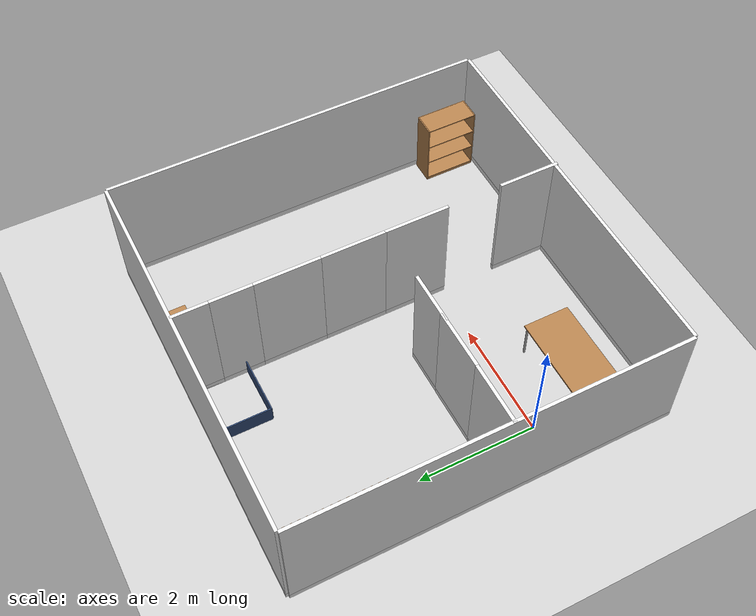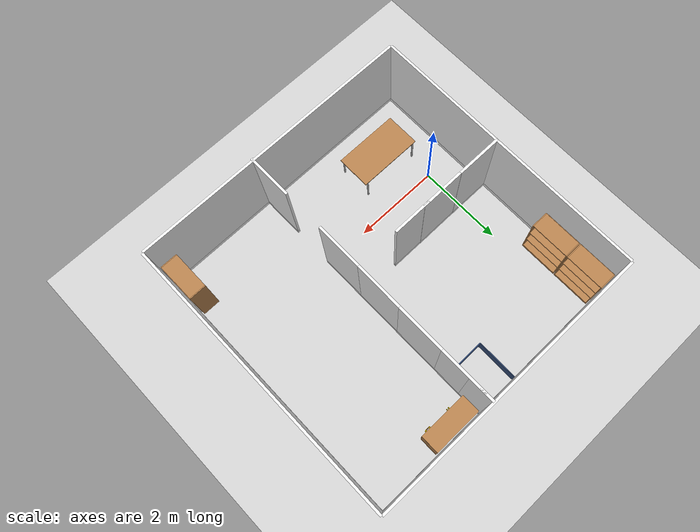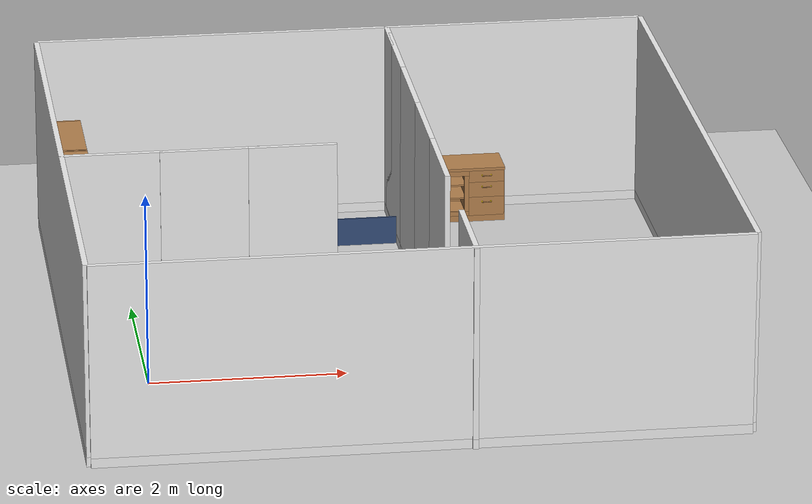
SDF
<sdf version="1.6">
 <world name="default">
  <light name="sun" type="directional">
   <pose>0 0 10 0 -0 0</pose>
   <diffuse>0.8 0.8 0.8 1</diffuse>
   <specular>0.2 0.2 0.2 1</specular>
   <attenuation>
    <range>1000</range>
    <constant>0.9</constant>
    <linear>0.01</linear>
    <quadratic>0.001</quadratic>
   </attenuation>
   <direction>-0.5 0.1 -0.9</direction>
  </light>
  <model name="ground_plane">
   <static>1</static>
   <link name="link">
    <collision name="collision">
     <geometry><plane><normal>0 0 1</normal><size>100 100</size></plane></geometry>
     <surface><friction><ode><mu>100</mu><mu2>50</mu2></ode></friction></surface>
    </collision>
    <visual name="visual">
     <cast_shadows>0</cast_shadows>
     <geometry><plane><normal>0 0 1</normal><size>100 100</size></plane></geometry>
     <material>
      <script><uri>file://media/materials/scripts/gazebo.material</uri><name>Gazebo/Grey</name></script>
     </material>
    </visual>
   </link>
  </model>
  <gravity>0 0 -9.8</gravity>
  <magnetic_field>6e-06 2.3e-05 -4.2e-05</magnetic_field>
  <atmosphere type="adiabatic"/>
  <physics name="default_physics" default="0" type="ode">
   <max_step_size>0.001</max_step_size>
   <real_time_factor>1</real_time_factor>
   <real_time_update_rate>1000</real_time_update_rate>
  </physics>
  <scene><ambient>0.4 0.4 0.4 1</ambient><background>0.7 0.7 0.7 1</background><shadows>1</shadows></scene>
  <spherical_coordinates>
   <surface_model>EARTH_WGS84</surface_model>
   <latitude_deg>0</latitude_deg>
   <longitude_deg>0</longitude_deg>
   <elevation>0</elevation>
   <heading_deg>0</heading_deg>
  </spherical_coordinates>
  <model name="full_wall_55_6475_2090">
   <link name="link">
    <inertial>
     <mass>50</mass>
     <inertia><ixx>1</ixx><ixy>0</ixy><ixz>0</ixz><iyy>1</iyy><iyz>0</iyz><izz>1</izz></inertia>
    </inertial>
    <visual name="bottom_frame">
     <pose>0 0 0.05 0 -0 0</pose>
     <geometry><box><size>0.055 6.475 0.1</size></box></geometry>
     <material>
      <script><uri>model://base_materials/color/scripts</uri><name>hsr_color/white</name></script>
     </material>
    </visual>
    <collision name="collision_bottom_frame">
     <pose>0 0 0.05 0 -0 0</pose>
     <geometry><box><size>0.055 6.475 0.1</size></box></geometry>
    </collision>
    <visual name="wall">
     <pose>0 0 1.095 0 -0 0</pose>
     <geometry><box><size>0.055 6.475 1.99</size></box></geometry>
     <material>
      <script>
       <uri>model://base_materials/wall/scripts</uri>
       <uri>model://base_materials/wall/textures</uri>
       <name>wall/white_noise</name>
      </script>
     </material>
    </visual>
    <collision name="collision_wall">
     <pose>0 0 1.095 0 -0 0</pose>
     <geometry><box><size>0.055 6.475 1.99</size></box></geometry>
    </collision>
    <velocity_decay><linear>0</linear><angular>0</angular></velocity_decay>
   </link>
   <static>1</static>
   <pose>-0.75 1.25 0 0 -0 0</pose>
  </model>
  <model name="full_wall_55_6475_2090_clone">
   <link name="link">
    <inertial>
     <mass>50</mass>
     <inertia><ixx>1</ixx><ixy>0</ixy><ixz>0</ixz><iyy>1</iyy><iyz>0</iyz><izz>1</izz></inertia>
    </inertial>
    <visual name="bottom_frame">
     <pose>0 0 0.05 0 -0 0</pose>
     <geometry><box><size>0.055 6.475 0.1</size></box></geometry>
     <material>
      <script><uri>model://base_materials/color/scripts</uri><name>hsr_color/white</name></script>
     </material>
    </visual>
    <collision name="collision_bottom_frame">
     <pose>0 0 0.05 0 -0 0</pose>
     <geometry><box><size>0.055 6.475 0.1</size></box></geometry>
    </collision>
    <visual name="wall">
     <pose>0 0 1.095 0 -0 0</pose>
     <geometry><box><size>0.055 6.475 1.99</size></box></geometry>
     <material>
      <script>
       <uri>model://base_materials/wall/scripts</uri>
       <uri>model://base_materials/wall/textures</uri>
       <name>wall/white_noise</name>
      </script>
     </material>
    </visual>
    <collision name="collision_wall">
     <pose>0 0 1.095 0 -0 0</pose>
     <geometry><box><size>0.055 6.475 1.99</size></box></geometry>
    </collision>
    <velocity_decay><linear>0</linear><angular>0</angular></velocity_decay>
   </link>
   <static>1</static>
   <pose>2.5 4.5 0 0 -0 1.57</pose>
  </model>
  <model name="full_wall_55_6475_2090_clone_clone">
   <link name="link">
    <inertial>
     <mass>50</mass>
     <inertia><ixx>1</ixx><ixy>0</ixy><ixz>0</ixz><iyy>1</iyy><iyz>0</iyz><izz>1</izz></inertia>
    </inertial>
    <visual name="bottom_frame">
     <pose>0 0 0.05 0 -0 0</pose>
     <geometry><box><size>0.055 6.475 0.1</size></box></geometry>
     <material>
      <script><uri>model://base_materials/color/scripts</uri><name>hsr_color/white</name></script>
     </material>
    </visual>
    <collision name="collision_bottom_frame">
     <pose>0 0 0.05 0 -0 0</pose>
     <geometry><box><size>0.055 6.475 0.1</size></box></geometry>
    </collision>
    <visual name="wall">
     <pose>0 0 1.095 0 -0 0</pose>
     <geometry><box><size>0.055 6.475 1.99</size></box></geometry>
     <material>
      <script>
       <uri>model://base_materials/wall/scripts</uri>
       <uri>model://base_materials/wall/textures</uri>
       <name>wall/white_noise</name>
      </script>
     </material>
    </visual>
    <collision name="collision_wall">
     <pose>0 0 1.095 0 -0 0</pose>
     <geometry><box><size>0.055 6.475 1.99</size></box></geometry>
    </collision>
    <velocity_decay><linear>0</linear><angular>0</angular></velocity_decay>
   </link>
   <static>1</static>
   <pose>2.5 -2 0 0 -0 1.57</pose>
  </model>
  <model name="full_wall_55_1100_2090">
   <link name="link">
    <inertial>
     <mass>50</mass>
     <inertia><ixx>1</ixx><ixy>0</ixy><ixz>0</ixz><iyy>1</iyy><iyz>0</iyz><izz>1</izz></inertia>
    </inertial>
    <visual name="bottom_frame">
     <pose>0 0 0.05 0 -0 0</pose>
     <geometry><box><size>0.055 1.1 0.1</size></box></geometry>
     <material>
      <script><uri>model://base_materials/color/scripts</uri><name>hsr_color/white</name></script>
     </material>
    </visual>
    <collision name="collision_bottom_frame">
     <pose>0 0 0.05 0 -0 0</pose>
     <geometry><box><size>0.055 1.1 0.1</size></box></geometry>
    </collision>
    <visual name="wall">
     <pose>0 0 1.095 0 -0 0</pose>
     <geometry><box><size>0.055 1.1 1.99</size></box></geometry>
     <material>
      <script>
       <uri>model://base_materials/wall/scripts</uri>
       <uri>model://base_materials/wall/textures</uri>
       <name>wall/white_noise</name>
      </script>
     </material>
    </visual>
    <collision name="collision_wall">
     <pose>0 0 1.095 0 -0 0</pose>
     <geometry><box><size>0.055 1.1 1.99</size></box></geometry>
    </collision>
    <velocity_decay><linear>0</linear><angular>0</angular></velocity_decay>
   </link>
   <static>1</static>
   <pose>3 0.474795 0 0 -0 0</pose>
  </model>
  <model name="full_wall_55_900_2090">
   <link name="link">
    <inertial>
     <mass>50</mass>
     <inertia><ixx>1</ixx><ixy>0</ixy><ixz>0</ixz><iyy>1</iyy><iyz>0</iyz><izz>1</izz></inertia>
    </inertial>
    <visual name="bottom_frame">
     <pose>0 0 0.05 0 -0 0</pose>
     <geometry><box><size>0.055 1.04 0.1</size></box></geometry>
     <material>
      <script><uri>model://base_materials/color/scripts</uri><name>hsr_color/white</name></script>
     </material>
    </visual>
    <collision name="collision_bottom_frame">
     <pose>0 0 0.05 0 -0 0</pose>
     <geometry><box><size>0.055 1.04 0.1</size></box></geometry>
    </collision>
    <visual name="wall">
     <pose>0 0 1.095 0 -0 0</pose>
     <geometry><box><size>0.055 1.04 1.99</size></box></geometry>
     <material>
      <script>
       <uri>model://base_materials/wall/scripts</uri>
       <uri>model://base_materials/wall/textures</uri>
       <name>wall/white_noise</name>
      </script>
     </material>
    </visual>
    <collision name="collision_wall">
     <pose>0 0 1.095 0 -0 0</pose>
     <geometry><box><size>0.055 1.04 1.99</size></box></geometry>
    </collision>
    <velocity_decay><linear>0</linear><angular>0</angular></velocity_decay>
   </link>
   <static>1</static>
   <pose>3 -1.53087 0 0 -0 0</pose>
  </model>
  <model name="full_wall_55_6475_2090_clone_0">
   <link name="link">
    <inertial>
     <mass>50</mass>
     <inertia><ixx>1</ixx><ixy>0</ixy><ixz>0</ixz><iyy>1</iyy><iyz>0</iyz><izz>1</izz></inertia>
    </inertial>
    <visual name="bottom_frame">
     <pose>0 0 0.05 0 -0 0</pose>
     <geometry><box><size>0.055 6.475 0.1</size></box></geometry>
     <material>
      <script><uri>model://base_materials/color/scripts</uri><name>hsr_color/white</name></script>
     </material>
    </visual>
    <collision name="collision_bottom_frame">
     <pose>0 0 0.05 0 -0 0</pose>
     <geometry><box><size>0.055 6.475 0.1</size></box></geometry>
    </collision>
    <visual name="wall">
     <pose>0 0 1.095 0 -0 0</pose>
     <geometry><box><size>0.055 6.475 1.99</size></box></geometry>
     <material>
      <script>
       <uri>model://base_materials/wall/scripts</uri>
       <uri>model://base_materials/wall/textures</uri>
       <name>wall/white_noise</name>
      </script>
     </material>
    </visual>
    <collision name="collision_wall">
     <pose>0 0 1.095 0 -0 0</pose>
     <geometry><box><size>0.055 6.475 1.99</size></box></geometry>
    </collision>
    <velocity_decay><linear>0</linear><angular>0</angular></velocity_decay>
   </link>
   <static>1</static>
   <pose>5.75 1.25 0 0 -0 0</pose>
  </model>
  <model name="full_wall_55_1100_2090_clone">
   <link name="link">
    <inertial>
     <mass>50</mass>
     <inertia><ixx>1</ixx><ixy>0</ixy><ixz>0</ixz><iyy>1</iyy><iyz>0</iyz><izz>1</izz></inertia>
    </inertial>
    <visual name="bottom_frame">
     <pose>0 0 0.05 0 -0 0</pose>
     <geometry><box><size>0.055 1.1 0.1</size></box></geometry>
     <material>
      <script><uri>model://base_materials/color/scripts</uri><name>hsr_color/white</name></script>
     </material>
    </visual>
    <collision name="collision_bottom_frame">
     <pose>0 0 0.05 0 -0 0</pose>
     <geometry><box><size>0.055 1.1 0.1</size></box></geometry>
    </collision>
    <visual name="wall">
     <pose>0 0 1.095 0 -0 0</pose>
     <geometry><box><size>0.055 1.1 1.99</size></box></geometry>
     <material>
      <script>
       <uri>model://base_materials/wall/scripts</uri>
       <uri>model://base_materials/wall/textures</uri>
       <name>wall/white_noise</name>
      </script>
     </material>
    </visual>
    <collision name="collision_wall">
     <pose>0 0 1.095 0 -0 0</pose>
     <geometry><box><size>0.055 1.1 1.99</size></box></geometry>
    </collision>
    <velocity_decay><linear>0</linear><angular>0</angular></velocity_decay>
   </link>
   <static>1</static>
   <pose>3 1.55 0 0 -0 0</pose>
  </model>
  <model name="full_wall_55_1100_2090_clone_clone">
   <link name="link">
    <inertial>
     <mass>50</mass>
     <inertia><ixx>1</ixx><ixy>0</ixy><ixz>0</ixz><iyy>1</iyy><iyz>0</iyz><izz>1</izz></inertia>
    </inertial>
    <visual name="bottom_frame">
     <pose>0 0 0.05 0 -0 0</pose>
     <geometry><box><size>0.055 1.1 0.1</size></box></geometry>
     <material>
      <script><uri>model://base_materials/color/scripts</uri><name>hsr_color/white</name></script>
     </material>
    </visual>
    <collision name="collision_bottom_frame">
     <pose>0 0 0.05 0 -0 0</pose>
     <geometry><box><size>0.055 1.1 0.1</size></box></geometry>
    </collision>
    <visual name="wall">
     <pose>0 0 1.095 0 -0 0</pose>
     <geometry><box><size>0.055 1.1 1.99</size></box></geometry>
     <material>
      <script>
       <uri>model://base_materials/wall/scripts</uri>
       <uri>model://base_materials/wall/textures</uri>
       <name>wall/white_noise</name>
      </script>
     </material>
    </visual>
    <collision name="collision_wall">
     <pose>0 0 1.095 0 -0 0</pose>
     <geometry><box><size>0.055 1.1 1.99</size></box></geometry>
    </collision>
    <velocity_decay><linear>0</linear><angular>0</angular></velocity_decay>
   </link>
   <static>1</static>
   <pose>3 2.65 0 0 -0 0</pose>
  </model>
  <model name="full_wall_55_1100_2090_clone_clone_0">
   <link name="link">
    <inertial>
     <mass>50</mass>
     <inertia><ixx>1</ixx><ixy>0</ixy><ixz>0</ixz><iyy>1</iyy><iyz>0</iyz><izz>1</izz></inertia>
    </inertial>
    <visual name="bottom_frame">
     <pose>0 0 0.05 0 -0 0</pose>
     <geometry><box><size>0.055 1.1 0.1</size></box></geometry>
     <material>
      <script><uri>model://base_materials/color/scripts</uri><name>hsr_color/white</name></script>
     </material>
    </visual>
    <collision name="collision_bottom_frame">
     <pose>0 0 0.05 0 -0 0</pose>
     <geometry><box><size>0.055 1.1 0.1</size></box></geometry>
    </collision>
    <visual name="wall">
     <pose>0 0 1.095 0 -0 0</pose>
     <geometry><box><size>0.055 1.1 1.99</size></box></geometry>
     <material>
      <script>
       <uri>model://base_materials/wall/scripts</uri>
       <uri>model://base_materials/wall/textures</uri>
       <name>wall/white_noise</name>
      </script>
     </material>
    </visual>
    <collision name="collision_wall">
     <pose>0 0 1.095 0 -0 0</pose>
     <geometry><box><size>0.055 1.1 1.99</size></box></geometry>
    </collision>
    <velocity_decay><linear>0</linear><angular>0</angular></velocity_decay>
   </link>
   <static>1</static>
   <pose>3 3.75 0 0 -0 0</pose>
  </model>
  <model name="full_wall_55_600_2090">
   <link name="link">
    <inertial>
     <mass>50</mass>
     <inertia><ixx>1</ixx><ixy>0</ixy><ixz>0</ixz><iyy>1</iyy><iyz>0</iyz><izz>1</izz></inertia>
    </inertial>
    <visual name="bottom_frame">
     <pose>0 0 0.05 0 -0 0</pose>
     <geometry><box><size>0.055 0.6 0.1</size></box></geometry>
     <material>
      <script><uri>model://base_materials/color/scripts</uri><name>hsr_color/white</name></script>
     </material>
    </visual>
    <collision name="collision_bottom_frame">
     <pose>0 0 0.05 0 -0 0</pose>
     <geometry><box><size>0.055 0.6 0.1</size></box></geometry>
    </collision>
    <visual name="wall">
     <pose>0 0 1.095 0 -0 0</pose>
     <geometry><box><size>0.055 0.6 1.99</size></box></geometry>
     <material>
      <script>
       <uri>model://base_materials/wall/scripts</uri>
       <uri>model://base_materials/wall/textures</uri>
       <name>wall/white_noise</name>
      </script>
     </material>
    </visual>
    <collision name="collision_wall">
     <pose>0 0 1.095 0 -0 0</pose>
     <geometry><box><size>0.055 0.6 1.99</size></box></geometry>
    </collision>
    <velocity_decay><linear>0</linear><angular>0</angular></velocity_decay>
   </link>
   <static>1</static>
   <pose>3 4.2 0 0 -0 0</pose>
  </model>
  <model name="low_wall">
   <link name="link">
    <inertial>
     <mass>50</mass>
     <inertia><ixx>1</ixx><ixy>0</ixy><ixz>0</ixz><iyy>1</iyy><iyz>0</iyz><izz>1</izz></inertia>
    </inertial>
    <visual name="wall">
     <pose>0 0 0.15 0 -0 0</pose>
     <geometry><box><size>0.02 1 0.3</size></box></geometry>
     <material>
      <ambient>0.392 0.584 0.929 1</ambient>
      <diffuse>0.196 0.292 0.4645 1</diffuse>
      <specular>0 0 0 1</specular>
     </material>
    </visual>
    <collision name="collision_wall">
     <pose>0 0 0.15 0 -0 0</pose>
     <geometry><box><size>0.02 1 0.3</size></box></geometry>
    </collision>
    <velocity_decay><linear>0</linear><angular>0</angular></velocity_decay>
   </link>
   <static>1</static>
   <pose>2 4 0 0 -0 0</pose>
  </model>
  <model name="low_wall_clone">
   <link name="link">
    <inertial>
     <mass>50</mass>
     <inertia><ixx>1</ixx><ixy>0</ixy><ixz>0</ixz><iyy>1</iyy><iyz>0</iyz><izz>1</izz></inertia>
    </inertial>
    <visual name="wall">
     <pose>0 0 0.15 0 -0 0</pose>
     <geometry><box><size>0.02 1 0.3</size></box></geometry>
     <material>
      <ambient>0.392 0.584 0.929 1</ambient>
      <diffuse>0.196 0.292 0.4645 1</diffuse>
      <specular>0 0 0 1</specular>
     </material>
    </visual>
    <collision name="collision_wall">
     <pose>0 0 0.15 0 -0 0</pose>
     <geometry><box><size>0.02 1 0.3</size></box></geometry>
    </collision>
    <velocity_decay><linear>0</linear><angular>0</angular></velocity_decay>
   </link>
   <static>1</static>
   <pose>2.5 3.5 0 0 0 -1.57</pose>
  </model>
  <model name="table">
   <static>1</static>
   <link name="link">
    <collision name="surface">
     <pose>0 0 1 0 -0 0</pose>
     <geometry><box><size>1.5 0.8 0.03</size></box></geometry>
     <surface><friction><ode><mu>0.6</mu><mu2>0.6</mu2></ode></friction></surface>
    </collision>
    <visual name="visual1">
     <pose>0 0 1 0 -0 0</pose>
     <geometry><box><size>1.5 0.8 0.03</size></box></geometry>
     <material>
      <script><uri>file://media/materials/scripts/gazebo.material</uri><name>Gazebo/Wood</name></script>
     </material>
    </visual>
    <collision name="front_left_leg">
     <pose>0.68 0.38 0.5 0 -0 0</pose>
     <geometry><cylinder><radius>0.02</radius><length>1</length></cylinder></geometry>
    </collision>
    <visual name="front_left_leg">
     <pose>0.68 0.38 0.5 0 -0 0</pose>
     <geometry><cylinder><radius>0.02</radius><length>1</length></cylinder></geometry>
     <material>
      <script><uri>file://media/materials/scripts/gazebo.material</uri><name>Gazebo/Grey</name></script>
     </material>
    </visual>
    <collision name="front_right_leg">
     <pose>0.68 -0.38 0.5 0 -0 0</pose>
     <geometry><cylinder><radius>0.02</radius><length>1</length></cylinder></geometry>
    </collision>
    <visual name="front_right_leg">
     <pose>0.68 -0.38 0.5 0 -0 0</pose>
     <geometry><cylinder><radius>0.02</radius><length>1</length></cylinder></geometry>
     <material>
      <script><uri>file://media/materials/scripts/gazebo.material</uri><name>Gazebo/Grey</name></script>
     </material>
    </visual>
    <collision name="back_right_leg">
     <pose>-0.68 -0.38 0.5 0 -0 0</pose>
     <geometry><cylinder><radius>0.02</radius><length>1</length></cylinder></geometry>
    </collision>
    <visual name="back_right_leg">
     <pose>-0.68 -0.38 0.5 0 -0 0</pose>
     <geometry><cylinder><radius>0.02</radius><length>1</length></cylinder></geometry>
     <material>
      <script><uri>file://media/materials/scripts/gazebo.material</uri><name>Gazebo/Grey</name></script>
     </material>
    </visual>
    <collision name="back_left_leg">
     <pose>-0.68 0.38 0.5 0 -0 0</pose>
     <geometry><cylinder><radius>0.02</radius><length>1</length></cylinder></geometry>
    </collision>
    <visual name="back_left_leg">
     <pose>-0.68 0.38 0.5 0 -0 0</pose>
     <geometry><cylinder><radius>0.02</radius><length>1</length></cylinder></geometry>
     <material>
      <script><uri>file://media/materials/scripts/gazebo.material</uri><name>Gazebo/Grey</name></script>
     </material>
    </visual>
   </link>
   <pose>0.601291 -0.994323 -0.38 0 -0 0</pose>
  </model>
  <model name="bookshelf">
   <static>1</static>
   <link name="link">
    <inertial><mass>1</mass></inertial>
    <collision name="back">
     <pose>0 0.005 0.6 0 -0 0</pose>
     <geometry><box><size>0.9 0.01 1.2</size></box></geometry>
    </collision>
    <visual name="visual1">
     <pose>0 0.005 0.6 0 -0 0</pose>
     <geometry><box><size>0.9 0.01 1.2</size></box></geometry>
     <material>
      <script><uri>file://media/materials/scripts/gazebo.material</uri><name>Gazebo/Wood</name></script>
     </material>
    </visual>
    <collision name="left_side">
     <pose>0.45 -0.195 0.6 0 -0 0</pose>
     <geometry><box><size>0.02 0.4 1.2</size></box></geometry>
    </collision>
    <visual name="visual2">
     <pose>0.45 -0.195 0.6 0 -0 0</pose>
     <geometry><box><size>0.02 0.4 1.2</size></box></geometry>
     <material>
      <script><uri>file://media/materials/scripts/gazebo.material</uri><name>Gazebo/Wood</name></script>
     </material>
    </visual>
    <collision name="right_side">
     <pose>-0.45 -0.195 0.6 0 -0 0</pose>
     <geometry><box><size>0.02 0.4 1.2</size></box></geometry>
    </collision>
    <visual name="visual3">
     <pose>-0.45 -0.195 0.6 0 -0 0</pose>
     <geometry><box><size>0.02 0.4 1.2</size></box></geometry>
     <material>
      <script><uri>file://media/materials/scripts/gazebo.material</uri><name>Gazebo/Wood</name></script>
     </material>
    </visual>
    <collision name="bottom">
     <pose>0 -0.195 0.03 0 -0 0</pose>
     <geometry><box><size>0.88 0.4 0.06</size></box></geometry>
    </collision>
    <visual name="visual4">
     <pose>0 -0.195 0.03 0 -0 0</pose>
     <geometry><box><size>0.88 0.4 0.06</size></box></geometry>
     <material>
      <script><uri>file://media/materials/scripts/gazebo.material</uri><name>Gazebo/Wood</name></script>
     </material>
    </visual>
    <collision name="top">
     <pose>0 -0.195 1.19 0 -0 0</pose>
     <geometry><box><size>0.88 0.4 0.02</size></box></geometry>
    </collision>
    <visual name="visual5">
     <pose>0 -0.195 1.19 0 -0 0</pose>
     <geometry><box><size>0.88 0.4 0.02</size></box></geometry>
     <material>
      <script><uri>file://media/materials/scripts/gazebo.material</uri><name>Gazebo/Wood</name></script>
     </material>
    </visual>
    <collision name="low_shelf">
     <pose>0 -0.195 0.43 0 -0 0</pose>
     <geometry><box><size>0.88 0.4 0.02</size></box></geometry>
    </collision>
    <visual name="visual6">
     <pose>0 -0.195 0.43 0 -0 0</pose>
     <geometry><box><size>0.88 0.4 0.02</size></box></geometry>
     <material>
      <script><uri>file://media/materials/scripts/gazebo.material</uri><name>Gazebo/Wood</name></script>
     </material>
    </visual>
    <collision name="high_shelf">
     <pose>0 -0.195 0.8 0 -0 0</pose>
     <geometry><box><size>0.88 0.4 0.02</size></box></geometry>
    </collision>
    <visual name="visual7">
     <pose>0 -0.195 0.8 0 -0 0</pose>
     <geometry><box><size>0.88 0.4 0.02</size></box></geometry>
     <material>
      <script><uri>file://media/materials/scripts/gazebo.material</uri><name>Gazebo/Wood</name></script>
     </material>
    </visual>
   </link>
   <pose>-0.7 4 0 0 -0 1.57</pose>
  </model>
  <model name="bookshelf_clone">
   <static>1</static>
   <link name="link">
    <inertial><mass>1</mass></inertial>
    <collision name="back">
     <pose>0 0.005 0.6 0 -0 0</pose>
     <geometry><box><size>0.9 0.01 1.2</size></box></geometry>
    </collision>
    <visual name="visual1">
     <pose>0 0.005 0.6 0 -0 0</pose>
     <geometry><box><size>0.9 0.01 1.2</size></box></geometry>
     <material>
      <script><uri>file://media/materials/scripts/gazebo.material</uri><name>Gazebo/Wood</name></script>
     </material>
    </visual>
    <collision name="left_side">
     <pose>0.45 -0.195 0.6 0 -0 0</pose>
     <geometry><box><size>0.02 0.4 1.2</size></box></geometry>
    </collision>
    <visual name="visual2">
     <pose>0.45 -0.195 0.6 0 -0 0</pose>
     <geometry><box><size>0.02 0.4 1.2</size></box></geometry>
     <material>
      <script><uri>file://media/materials/scripts/gazebo.material</uri><name>Gazebo/Wood</name></script>
     </material>
    </visual>
    <collision name="right_side">
     <pose>-0.45 -0.195 0.6 0 -0 0</pose>
     <geometry><box><size>0.02 0.4 1.2</size></box></geometry>
    </collision>
    <visual name="visual3">
     <pose>-0.45 -0.195 0.6 0 -0 0</pose>
     <geometry><box><size>0.02 0.4 1.2</size></box></geometry>
     <material>
      <script><uri>file://media/materials/scripts/gazebo.material</uri><name>Gazebo/Wood</name></script>
     </material>
    </visual>
    <collision name="bottom">
     <pose>0 -0.195 0.03 0 -0 0</pose>
     <geometry><box><size>0.88 0.4 0.06</size></box></geometry>
    </collision>
    <visual name="visual4">
     <pose>0 -0.195 0.03 0 -0 0</pose>
     <geometry><box><size>0.88 0.4 0.06</size></box></geometry>
     <material>
      <script><uri>file://media/materials/scripts/gazebo.material</uri><name>Gazebo/Wood</name></script>
     </material>
    </visual>
    <collision name="top">
     <pose>0 -0.195 1.19 0 -0 0</pose>
     <geometry><box><size>0.88 0.4 0.02</size></box></geometry>
    </collision>
    <visual name="visual5">
     <pose>0 -0.195 1.19 0 -0 0</pose>
     <geometry><box><size>0.88 0.4 0.02</size></box></geometry>
     <material>
      <script><uri>file://media/materials/scripts/gazebo.material</uri><name>Gazebo/Wood</name></script>
     </material>
    </visual>
    <collision name="low_shelf">
     <pose>0 -0.195 0.43 0 -0 0</pose>
     <geometry><box><size>0.88 0.4 0.02</size></box></geometry>
    </collision>
    <visual name="visual6">
     <pose>0 -0.195 0.43 0 -0 0</pose>
     <geometry><box><size>0.88 0.4 0.02</size></box></geometry>
     <material>
      <script><uri>file://media/materials/scripts/gazebo.material</uri><name>Gazebo/Wood</name></script>
     </material>
    </visual>
    <collision name="high_shelf">
     <pose>0 -0.195 0.8 0 -0 0</pose>
     <geometry><box><size>0.88 0.4 0.02</size></box></geometry>
    </collision>
    <visual name="visual7">
     <pose>0 -0.195 0.8 0 -0 0</pose>
     <geometry><box><size>0.88 0.4 0.02</size></box></geometry>
     <material>
      <script><uri>file://media/materials/scripts/gazebo.material</uri><name>Gazebo/Wood</name></script>
     </material>
    </visual>
   </link>
   <pose>-0.7 3.07 0 0 -0 1.57</pose>
  </model>
  <model name="living_sideboard">
   <link name="link">
    <inertial>
     <mass>10</mass>
     <inertia><ixx>1</ixx><ixy>0</ixy><ixz>0</ixz><iyy>1</iyy><iyz>0</iyz><izz>1</izz></inertia>
    </inertial>
    <visual name="left_board">
     <pose>-0.23 0.01 0.3375 0 -0 0</pose>
     <geometry><box><size>0.42 0.02 0.495</size></box></geometry>
     <material>
      <script><uri>model://base_materials/wood/scripts/wood.material</uri><name>base_materials/wood</name></script>
     </material>
    </visual>
    <collision name="collision_left_board">
     <pose>-0.23 0.01 0.3375 0 -0 0</pose>
     <geometry><box><size>0.42 0.02 0.495</size></box></geometry>
    </collision>
    <visual name="back_board">
     <pose>-0.42 0.575 0.2925 0 -0 0</pose>
     <geometry><box><size>0.02 1.11 0.585</size></box></geometry>
     <material>
      <script><uri>model://base_materials/wood/scripts/wood.material</uri><name>base_materials/wood</name></script>
     </material>
    </visual>
    <collision name="collision_back_board">
     <pose>-0.42 0.575 0.2925 0 -0 0</pose>
     <geometry><box><size>0.02 1.11 0.585</size></box></geometry>
    </collision>
    <visual name="right_board">
     <pose>-0.23 1.14 0.3375 0 -0 0</pose>
     <geometry><box><size>0.42 0.02 0.495</size></box></geometry>
     <material>
      <script><uri>model://base_materials/wood/scripts/wood.material</uri><name>base_materials/wood</name></script>
     </material>
    </visual>
    <collision name="collision_right_board">
     <pose>-0.23 1.14 0.3375 0 -0 0</pose>
     <geometry><box><size>0.42 0.02 0.495</size></box></geometry>
    </collision>
    <visual name="center_vertical_board1">
     <pose>-0.23 0.74 0.3375 0 -0 0</pose>
     <geometry><box><size>0.42 0.02 0.495</size></box></geometry>
     <material>
      <script><uri>model://base_materials/wood/scripts/wood.material</uri><name>base_materials/wood</name></script>
     </material>
    </visual>
    <collision name="collision_center_vertical_board1">
     <pose>-0.23 0.74 0.3375 0 -0 0</pose>
     <geometry><box><size>0.42 0.02 0.495</size></box></geometry>
    </collision>
    <visual name="top_board">
     <pose>-0.22 0.575 0.6 0 -0 0</pose>
     <geometry><box><size>0.44 1.15 0.03</size></box></geometry>
     <material>
      <script><uri>model://base_materials/wood/scripts/wood.material</uri><name>base_materials/wood</name></script>
     </material>
    </visual>
    <collision name="collision_top_board">
     <pose>-0.22 0.575 0.6 0 -0 0</pose>
     <geometry><box><size>0.44 1.15 0.03</size></box></geometry>
    </collision>
    <visual name="bottom_board">
     <pose>-0.23 0.575 0.045 0 -0 0</pose>
     <geometry><box><size>0.42 1.15 0.09</size></box></geometry>
     <material>
      <script><uri>model://base_materials/wood/scripts/wood.material</uri><name>base_materials/wood</name></script>
     </material>
    </visual>
    <collision name="collision_bottom_board">
     <pose>-0.23 0.575 0.045 0 -0 0</pose>
     <geometry><box><size>0.42 1.15 0.09</size></box></geometry>
    </collision>
    <visual name="1st_shelf">
     <pose>-0.225 0.37 0.259 0 -0 0</pose>
     <geometry><box><size>0.36 0.72 0.018</size></box></geometry>
     <material>
      <script><uri>model://base_materials/wood/scripts/wood.material</uri><name>base_materials/wood</name></script>
     </material>
    </visual>
    <collision name="collision_1st_shelf">
     <pose>-0.225 0.37 0.259 0 -0 0</pose>
     <geometry><box><size>0.36 0.72 0.018</size></box></geometry>
    </collision>
    <visual name="2nd_shelf">
     <pose>-0.225 0.37 0.407 0 -0 0</pose>
     <geometry><box><size>0.36 0.72 0.018</size></box></geometry>
     <material>
      <script><uri>model://base_materials/wood/scripts/wood.material</uri><name>base_materials/wood</name></script>
     </material>
    </visual>
    <collision name="collision_2nd_shelf">
     <pose>-0.225 0.37 0.407 0 -0 0</pose>
     <geometry><box><size>0.36 0.72 0.018</size></box></geometry>
    </collision>
    <visual name="1st_drawer">
     <pose>-0.2025 0.95 0.52 0 -0 0</pose>
     <geometry><box><size>0.405 0.38 0.13</size></box></geometry>
     <material>
      <script><uri>model://base_materials/wood/scripts/wood.material</uri><name>base_materials/wood</name></script>
     </material>
    </visual>
    <collision name="collision_1st_drawer">
     <pose>-0.2025 0.95 0.52 0 -0 0</pose>
     <geometry><box><size>0.405 0.38 0.13</size></box></geometry>
    </collision>
    <visual name="1st_drawer_handle_l1">
     <pose>0.015 0.9015 0.535 3.14159 1.57079 3.14159</pose>
     <geometry><cylinder><radius>0.006</radius><length>0.03</length></cylinder></geometry>
     <material>
      <ambient>1 0.84314 0 1</ambient>
      <diffuse>1 0.84314 0 1</diffuse>
      <specular>0.1 0.1 0.1 1</specular>
     </material>
    </visual>
    <collision name="collision_1st_drawer_handle_l1">
     <pose>0.015 0.9015 0.535 3.14159 1.57079 3.14159</pose>
     <geometry><cylinder><radius>0.006</radius><length>0.03</length></cylinder></geometry>
    </collision>
    <visual name="1st_drawer_handle_l2">
     <pose>0.03 0.9015 0.535 0 -0 0</pose>
     <geometry><sphere><radius>0.006</radius></sphere></geometry>
     <material>
      <ambient>1 0.84314 0 1</ambient>
      <diffuse>1 0.84314 0 1</diffuse>
      <specular>0.1 0.1 0.1 1</specular>
     </material>
    </visual>
    <collision name="collision_1st_drawer_handle_l2">
     <pose>0.03 0.9015 0.535 0 -0 0</pose>
     <geometry><sphere><radius>0.006</radius></sphere></geometry>
    </collision>
    <visual name="1st_drawer_handle_r1">
     <pose>0.015 0.9985 0.535 3.14159 1.57079 3.14159</pose>
     <geometry><cylinder><radius>0.006</radius><length>0.03</length></cylinder></geometry>
     <material>
      <ambient>1 0.84314 0 1</ambient>
      <diffuse>1 0.84314 0 1</diffuse>
      <specular>0.1 0.1 0.1 1</specular>
     </material>
    </visual>
    <collision name="collision_1st_drawer_handle_r1">
     <pose>0.015 0.9985 0.535 3.14159 1.57079 3.14159</pose>
     <geometry><cylinder><radius>0.006</radius><length>0.03</length></cylinder></geometry>
    </collision>
    <visual name="1st_drawer_handle_r2">
     <pose>0.03 0.9985 0.535 0 -0 0</pose>
     <geometry><sphere><radius>0.006</radius></sphere></geometry>
     <material>
      <ambient>1 0.84314 0 1</ambient>
      <diffuse>1 0.84314 0 1</diffuse>
      <specular>0.1 0.1 0.1 1</specular>
     </material>
    </visual>
    <collision name="collision_1st_drawer_handle_r2">
     <pose>0.03 0.9985 0.535 0 -0 0</pose>
     <geometry><sphere><radius>0.006</radius></sphere></geometry>
    </collision>
    <visual name="1st_drawer_handle_center">
     <pose>0.03 0.95 0.535 1.5708 -0 0</pose>
     <geometry><cylinder><radius>0.006</radius><length>0.097</length></cylinder></geometry>
     <material>
      <script><uri>model://base_materials/wood/scripts/wood.material</uri><name>base_materials/wood</name></script>
     </material>
    </visual>
    <collision name="collision_1st_drawer_handle_center">
     <pose>0.03 0.95 0.535 1.5708 -0 0</pose>
     <geometry><cylinder><radius>0.006</radius><length>0.097</length></cylinder></geometry>
    </collision>
    <visual name="2nd_drawer">
     <pose>-0.2025 0.95 0.37 0 -0 0</pose>
     <geometry><box><size>0.405 0.38 0.17</size></box></geometry>
     <material>
      <script><uri>model://base_materials/wood/scripts/wood.material</uri><name>base_materials/wood</name></script>
     </material>
    </visual>
    <collision name="collision_2nd_drawer">
     <pose>-0.2025 0.95 0.37 0 -0 0</pose>
     <geometry><box><size>0.405 0.38 0.17</size></box></geometry>
    </collision>
    <visual name="2nd_drawer_handle_l1">
     <pose>0.015 0.9015 0.405 3.14159 1.57079 3.14159</pose>
     <geometry><cylinder><radius>0.006</radius><length>0.03</length></cylinder></geometry>
     <material>
      <ambient>1 0.84314 0 1</ambient>
      <diffuse>1 0.84314 0 1</diffuse>
      <specular>0.1 0.1 0.1 1</specular>
     </material>
    </visual>
    <collision name="collision_2nd_drawer_handle_l1">
     <pose>0.015 0.9015 0.405 3.14159 1.57079 3.14159</pose>
     <geometry><cylinder><radius>0.006</radius><length>0.03</length></cylinder></geometry>
    </collision>
    <visual name="2nd_drawer_handle_l2">
     <pose>0.03 0.9015 0.405 0 -0 0</pose>
     <geometry><sphere><radius>0.006</radius></sphere></geometry>
     <material>
      <ambient>1 0.84314 0 1</ambient>
      <diffuse>1 0.84314 0 1</diffuse>
      <specular>0.1 0.1 0.1 1</specular>
     </material>
    </visual>
    <collision name="collision_2nd_drawer_handle_l2">
     <pose>0.03 0.9015 0.405 0 -0 0</pose>
     <geometry><sphere><radius>0.006</radius></sphere></geometry>
    </collision>
    <visual name="2nd_drawer_handle_r1">
     <pose>0.015 0.9985 0.405 3.14159 1.57079 3.14159</pose>
     <geometry><cylinder><radius>0.006</radius><length>0.03</length></cylinder></geometry>
     <material>
      <ambient>1 0.84314 0 1</ambient>
      <diffuse>1 0.84314 0 1</diffuse>
      <specular>0.1 0.1 0.1 1</specular>
     </material>
    </visual>
    <collision name="collision_2nd_drawer_handle_r1">
     <pose>0.015 0.9985 0.405 3.14159 1.57079 3.14159</pose>
     <geometry><cylinder><radius>0.006</radius><length>0.03</length></cylinder></geometry>
    </collision>
    <visual name="2nd_drawer_handle_r2">
     <pose>0.03 0.9985 0.405 0 -0 0</pose>
     <geometry><sphere><radius>0.006</radius></sphere></geometry>
     <material>
      <ambient>1 0.84314 0 1</ambient>
      <diffuse>1 0.84314 0 1</diffuse>
      <specular>0.1 0.1 0.1 1</specular>
     </material>
    </visual>
    <collision name="collision_2nd_drawer_handle_r2">
     <pose>0.03 0.9985 0.405 0 -0 0</pose>
     <geometry><sphere><radius>0.006</radius></sphere></geometry>
    </collision>
    <visual name="2nd_drawer_handle_center">
     <pose>0.03 0.95 0.405 1.5708 -0 0</pose>
     <geometry><cylinder><radius>0.006</radius><length>0.097</length></cylinder></geometry>
     <material>
      <script><uri>model://base_materials/wood/scripts/wood.material</uri><name>base_materials/wood</name></script>
     </material>
    </visual>
    <collision name="collision_2nd_drawer_handle_center">
     <pose>0.03 0.95 0.405 1.5708 -0 0</pose>
     <geometry><cylinder><radius>0.006</radius><length>0.097</length></cylinder></geometry>
    </collision>
    <visual name="3rd_drawer">
     <pose>-0.2025 0.95 0.18 0 -0 0</pose>
     <geometry><box><size>0.405 0.38 0.21</size></box></geometry>
     <material>
      <script><uri>model://base_materials/wood/scripts/wood.material</uri><name>base_materials/wood</name></script>
     </material>
    </visual>
    <collision name="collision_3rd_drawer">
     <pose>-0.2025 0.95 0.18 0 -0 0</pose>
     <geometry><box><size>0.405 0.38 0.21</size></box></geometry>
    </collision>
    <visual name="3rd_drawer_handle_l1">
     <pose>0.015 0.9015 0.235 3.14159 1.57079 3.14159</pose>
     <geometry><cylinder><radius>0.006</radius><length>0.03</length></cylinder></geometry>
     <material>
      <ambient>1 0.84314 0 1</ambient>
      <diffuse>1 0.84314 0 1</diffuse>
      <specular>0.1 0.1 0.1 1</specular>
     </material>
    </visual>
    <collision name="collision_3rd_drawer_handle_l1">
     <pose>0.015 0.9015 0.235 3.14159 1.57079 3.14159</pose>
     <geometry><cylinder><radius>0.006</radius><length>0.03</length></cylinder></geometry>
    </collision>
    <visual name="3rd_drawer_handle_l2">
     <pose>0.03 0.9015 0.235 0 -0 0</pose>
     <geometry><sphere><radius>0.006</radius></sphere></geometry>
     <material>
      <ambient>1 0.84314 0 1</ambient>
      <diffuse>1 0.84314 0 1</diffuse>
      <specular>0.1 0.1 0.1 1</specular>
     </material>
    </visual>
    <collision name="collision_3rd_drawer_handle_l2">
     <pose>0.03 0.9015 0.235 0 -0 0</pose>
     <geometry><sphere><radius>0.006</radius></sphere></geometry>
    </collision>
    <visual name="3rd_drawer_handle_r1">
     <pose>0.015 0.9985 0.235 3.14159 1.57079 3.14159</pose>
     <geometry><cylinder><radius>0.006</radius><length>0.03</length></cylinder></geometry>
     <material>
      <ambient>1 0.84314 0 1</ambient>
      <diffuse>1 0.84314 0 1</diffuse>
      <specular>0.1 0.1 0.1 1</specular>
     </material>
    </visual>
    <collision name="collision_3rd_drawer_handle_r1">
     <pose>0.015 0.9985 0.235 3.14159 1.57079 3.14159</pose>
     <geometry><cylinder><radius>0.006</radius><length>0.03</length></cylinder></geometry>
    </collision>
    <visual name="3rd_drawer_handle_r2">
     <pose>0.03 0.9985 0.235 0 -0 0</pose>
     <geometry><sphere><radius>0.006</radius></sphere></geometry>
     <material>
      <ambient>1 0.84314 0 1</ambient>
      <diffuse>1 0.84314 0 1</diffuse>
      <specular>0.1 0.1 0.1 1</specular>
     </material>
    </visual>
    <collision name="collision_3rd_drawer_handle_r2">
     <pose>0.03 0.9985 0.235 0 -0 0</pose>
     <geometry><sphere><radius>0.006</radius></sphere></geometry>
    </collision>
    <visual name="3rd_drawer_handle_center">
     <pose>0.03 0.95 0.235 1.5708 -0 0</pose>
     <geometry><cylinder><radius>0.006</radius><length>0.097</length></cylinder></geometry>
     <material>
      <script><uri>model://base_materials/wood/scripts/wood.material</uri><name>base_materials/wood</name></script>
     </material>
    </visual>
    <collision name="collision_3rd_drawer_handle_center">
     <pose>0.03 0.95 0.235 1.5708 -0 0</pose>
     <geometry><cylinder><radius>0.006</radius><length>0.097</length></cylinder></geometry>
    </collision>
    <visual name="left_door_left_frame">
     <pose>-0.01 0.025 0.3275 0 -0 0</pose>
     <geometry><box><size>0.02 0.05 0.405</size></box></geometry>
     <material>
      <script><uri>model://base_materials/wood/scripts/wood.material</uri><name>base_materials/wood</name></script>
     </material>
    </visual>
    <collision name="collision_left_door_left_frame">
     <pose>-0.01 0.025 0.3275 0 -0 0</pose>
     <geometry><box><size>0.02 0.05 0.405</size></box></geometry>
    </collision>
    <visual name="left_door_right_frame">
     <pose>-0.01 0.355 0.3275 0 -0 0</pose>
     <geometry><box><size>0.02 0.05 0.405</size></box></geometry>
     <material>
      <script><uri>model://base_materials/wood/scripts/wood.material</uri><name>base_materials/wood</name></script>
     </material>
    </visual>
    <collision name="collision_left_door_right_frame">
     <pose>-0.01 0.355 0.3275 0 -0 0</pose>
     <geometry><box><size>0.02 0.05 0.405</size></box></geometry>
    </collision>
    <visual name="left_door_handle_top1">
     <pose>0.015 0.355 0.4475 3.14159 1.57079 3.14159</pose>
     <geometry><cylinder><radius>0.006</radius><length>0.03</length></cylinder></geometry>
     <material>
      <ambient>1 0.84314 0 1</ambient>
      <diffuse>1 0.84314 0 1</diffuse>
      <specular>0.1 0.1 0.1 1</specular>
     </material>
    </visual>
    <collision name="collision_left_door_handle_top1">
     <pose>0.015 0.355 0.4475 3.14159 1.57079 3.14159</pose>
     <geometry><cylinder><radius>0.006</radius><length>0.03</length></cylinder></geometry>
    </collision>
    <visual name="left_door_handle_top2">
     <pose>0.03 0.355 0.4475 0 -0 0</pose>
     <geometry><sphere><radius>0.006</radius></sphere></geometry>
     <material>
      <ambient>1 0.84314 0 1</ambient>
      <diffuse>1 0.84314 0 1</diffuse>
      <specular>0.1 0.1 0.1 1</specular>
     </material>
    </visual>
    <collision name="collision_left_door_handle_top2">
     <pose>0.03 0.355 0.4475 0 -0 0</pose>
     <geometry><sphere><radius>0.006</radius></sphere></geometry>
    </collision>
    <visual name="left_door_handle_bottom1">
     <pose>0.015 0.355 0.3505 3.14159 1.57079 3.14159</pose>
     <geometry><cylinder><radius>0.006</radius><length>0.03</length></cylinder></geometry>
     <material>
      <ambient>1 0.84314 0 1</ambient>
      <diffuse>1 0.84314 0 1</diffuse>
      <specular>0.1 0.1 0.1 1</specular>
     </material>
    </visual>
    <collision name="collision_left_door_handle_bottom1">
     <pose>0.015 0.355 0.3505 3.14159 1.57079 3.14159</pose>
     <geometry><cylinder><radius>0.006</radius><length>0.03</length></cylinder></geometry>
    </collision>
    <visual name="left_door_handle_bottom2">
     <pose>0.03 0.355 0.3505 0 -0 0</pose>
     <geometry><sphere><radius>0.006</radius></sphere></geometry>
     <material>
      <ambient>1 0.84314 0 1</ambient>
      <diffuse>1 0.84314 0 1</diffuse>
      <specular>0.1 0.1 0.1 1</specular>
     </material>
    </visual>
    <collision name="collision_left_door_handle_bottom2">
     <pose>0.03 0.355 0.3505 0 -0 0</pose>
     <geometry><sphere><radius>0.006</radius></sphere></geometry>
    </collision>
    <visual name="left_door_handle_center">
     <pose>0.03 0.355 0.399 0 -0 0</pose>
     <geometry><cylinder><radius>0.006</radius><length>0.097</length></cylinder></geometry>
     <material>
      <script><uri>model://base_materials/wood/scripts/wood.material</uri><name>base_materials/wood</name></script>
     </material>
    </visual>
    <collision name="collision_left_door_handle_center">
     <pose>0.03 0.355 0.399 0 -0 0</pose>
     <geometry><cylinder><radius>0.006</radius><length>0.097</length></cylinder></geometry>
    </collision>
    <visual name="left_door_top_frame">
     <pose>-0.01 0.19 0.5575 0 -0 0</pose>
     <geometry><box><size>0.02 0.38 0.055</size></box></geometry>
     <material>
      <script><uri>model://base_materials/wood/scripts/wood.material</uri><name>base_materials/wood</name></script>
     </material>
    </visual>
    <collision name="collision_left_door_top_frame">
     <pose>-0.01 0.19 0.5575 0 -0 0</pose>
     <geometry><box><size>0.02 0.38 0.055</size></box></geometry>
    </collision>
    <visual name="left_door_bottom_frame">
     <pose>-0.01 0.19 0.1 0 -0 0</pose>
     <geometry><box><size>0.02 0.38 0.05</size></box></geometry>
     <material>
      <script><uri>model://base_materials/wood/scripts/wood.material</uri><name>base_materials/wood</name></script>
     </material>
    </visual>
    <collision name="collision_left_door_bottom_frame">
     <pose>-0.01 0.19 0.1 0 -0 0</pose>
     <geometry><box><size>0.02 0.38 0.05</size></box></geometry>
    </collision>
    <visual name="right_door_left_frame">
     <pose>-0.01 0.405 0.3275 0 -0 0</pose>
     <geometry><box><size>0.02 0.05 0.405</size></box></geometry>
     <material>
      <script><uri>model://base_materials/wood/scripts/wood.material</uri><name>base_materials/wood</name></script>
     </material>
    </visual>
    <collision name="collision_right_door_left_frame">
     <pose>-0.01 0.405 0.3275 0 -0 0</pose>
     <geometry><box><size>0.02 0.05 0.405</size></box></geometry>
    </collision>
    <visual name="right_door_right_frame">
     <pose>-0.01 0.735 0.3275 0 -0 0</pose>
     <geometry><box><size>0.02 0.05 0.405</size></box></geometry>
     <material>
      <script><uri>model://base_materials/wood/scripts/wood.material</uri><name>base_materials/wood</name></script>
     </material>
    </visual>
    <collision name="collision_right_door_right_frame">
     <pose>-0.01 0.735 0.3275 0 -0 0</pose>
     <geometry><box><size>0.02 0.05 0.405</size></box></geometry>
    </collision>
    <visual name="right_door_top_frame">
     <pose>-0.01 0.57 0.5575 0 -0 0</pose>
     <geometry><box><size>0.02 0.38 0.055</size></box></geometry>
     <material>
      <script><uri>model://base_materials/wood/scripts/wood.material</uri><name>base_materials/wood</name></script>
     </material>
    </visual>
    <collision name="collision_right_door_top_frame">
     <pose>-0.01 0.57 0.5575 0 -0 0</pose>
     <geometry><box><size>0.02 0.38 0.055</size></box></geometry>
    </collision>
    <visual name="right_door_bottom_frame">
     <pose>-0.01 0.57 0.1 0 -0 0</pose>
     <geometry><box><size>0.02 0.38 0.05</size></box></geometry>
     <material>
      <script><uri>model://base_materials/wood/scripts/wood.material</uri><name>base_materials/wood</name></script>
     </material>
    </visual>
    <collision name="collision_right_door_bottom_frame">
     <pose>-0.01 0.57 0.1 0 -0 0</pose>
     <geometry><box><size>0.02 0.38 0.05</size></box></geometry>
    </collision>
    <visual name="right_door_handle_top1">
     <pose>0.015 0.405 0.4475 3.14159 1.57079 3.14159</pose>
     <geometry><cylinder><radius>0.006</radius><length>0.03</length></cylinder></geometry>
     <material>
      <ambient>1 0.84314 0 1</ambient>
      <diffuse>1 0.84314 0 1</diffuse>
      <specular>0.1 0.1 0.1 1</specular>
     </material>
    </visual>
    <collision name="collision_right_door_handle_top1">
     <pose>0.015 0.405 0.4475 3.14159 1.57079 3.14159</pose>
     <geometry><cylinder><radius>0.006</radius><length>0.03</length></cylinder></geometry>
    </collision>
    <visual name="right_door_handle_top2">
     <pose>0.03 0.405 0.4475 0 -0 0</pose>
     <geometry><sphere><radius>0.006</radius></sphere></geometry>
     <material>
      <ambient>1 0.84314 0 1</ambient>
      <diffuse>1 0.84314 0 1</diffuse>
      <specular>0.1 0.1 0.1 1</specular>
     </material>
    </visual>
    <collision name="collision_right_door_handle_top2">
     <pose>0.03 0.405 0.4475 0 -0 0</pose>
     <geometry><sphere><radius>0.006</radius></sphere></geometry>
    </collision>
    <visual name="right_door_handle_bottom1">
     <pose>0.015 0.405 0.3505 3.14159 1.57079 3.14159</pose>
     <geometry><cylinder><radius>0.006</radius><length>0.03</length></cylinder></geometry>
     <material>
      <ambient>1 0.84314 0 1</ambient>
      <diffuse>1 0.84314 0 1</diffuse>
      <specular>0.1 0.1 0.1 1</specular>
     </material>
    </visual>
    <collision name="collision_right_door_handle_bottom1">
     <pose>0.015 0.405 0.3505 3.14159 1.57079 3.14159</pose>
     <geometry><cylinder><radius>0.006</radius><length>0.03</length></cylinder></geometry>
    </collision>
    <visual name="right_door_handle_bottom2">
     <pose>0.03 0.405 0.3505 0 -0 0</pose>
     <geometry><sphere><radius>0.006</radius></sphere></geometry>
     <material>
      <ambient>1 0.84314 0 1</ambient>
      <diffuse>1 0.84314 0 1</diffuse>
      <specular>0.1 0.1 0.1 1</specular>
     </material>
    </visual>
    <collision name="collision_right_door_handle_bottom2">
     <pose>0.03 0.405 0.3505 0 -0 0</pose>
     <geometry><sphere><radius>0.006</radius></sphere></geometry>
    </collision>
    <visual name="right_door_handle_center">
     <pose>0.03 0.405 0.399 0 -0 0</pose>
     <geometry><cylinder><radius>0.006</radius><length>0.097</length></cylinder></geometry>
     <material>
      <script><uri>model://base_materials/wood/scripts/wood.material</uri><name>base_materials/wood</name></script>
     </material>
    </visual>
    <collision name="collision_right_door_handle_center">
     <pose>0.03 0.4 0.399 0 -0 0</pose>
     <geometry><cylinder><radius>0.006</radius><length>0.097</length></cylinder></geometry>
    </collision>
    <velocity_decay><linear>0</linear><angular>0</angular></velocity_decay>
   </link>
   <static>1</static>
   <pose>3.06801 4.00005 0 0 0 -1.57</pose>
  </model>
  <model name="bookshelf_0">
   <static>1</static>
   <link name="link">
    <inertial><mass>1</mass></inertial>
    <collision name="back">
     <pose>0 0.005 0.6 0 -0 0</pose>
     <geometry><box><size>0.9 0.01 1.2</size></box></geometry>
    </collision>
    <visual name="visual1">
     <pose>0 0.005 0.6 0 -0 0</pose>
     <geometry><box><size>0.9 0.01 1.2</size></box></geometry>
     <material>
      <script><uri>file://media/materials/scripts/gazebo.material</uri><name>Gazebo/Wood</name></script>
     </material>
    </visual>
    <collision name="left_side">
     <pose>0.45 -0.195 0.6 0 -0 0</pose>
     <geometry><box><size>0.02 0.4 1.2</size></box></geometry>
    </collision>
    <visual name="visual2">
     <pose>0.45 -0.195 0.6 0 -0 0</pose>
     <geometry><box><size>0.02 0.4 1.2</size></box></geometry>
     <material>
      <script><uri>file://media/materials/scripts/gazebo.material</uri><name>Gazebo/Wood</name></script>
     </material>
    </visual>
    <collision name="right_side">
     <pose>-0.45 -0.195 0.6 0 -0 0</pose>
     <geometry><box><size>0.02 0.4 1.2</size></box></geometry>
    </collision>
    <visual name="visual3">
     <pose>-0.45 -0.195 0.6 0 -0 0</pose>
     <geometry><box><size>0.02 0.4 1.2</size></box></geometry>
     <material>
      <script><uri>file://media/materials/scripts/gazebo.material</uri><name>Gazebo/Wood</name></script>
     </material>
    </visual>
    <collision name="bottom">
     <pose>0 -0.195 0.03 0 -0 0</pose>
     <geometry><box><size>0.88 0.4 0.06</size></box></geometry>
    </collision>
    <visual name="visual4">
     <pose>0 -0.195 0.03 0 -0 0</pose>
     <geometry><box><size>0.88 0.4 0.06</size></box></geometry>
     <material>
      <script><uri>file://media/materials/scripts/gazebo.material</uri><name>Gazebo/Wood</name></script>
     </material>
    </visual>
    <collision name="top">
     <pose>0 -0.195 1.19 0 -0 0</pose>
     <geometry><box><size>0.88 0.4 0.02</size></box></geometry>
    </collision>
    <visual name="visual5">
     <pose>0 -0.195 1.19 0 -0 0</pose>
     <geometry><box><size>0.88 0.4 0.02</size></box></geometry>
     <material>
      <script><uri>file://media/materials/scripts/gazebo.material</uri><name>Gazebo/Wood</name></script>
     </material>
    </visual>
    <collision name="low_shelf">
     <pose>0 -0.195 0.43 0 -0 0</pose>
     <geometry><box><size>0.88 0.4 0.02</size></box></geometry>
    </collision>
    <visual name="visual6">
     <pose>0 -0.195 0.43 0 -0 0</pose>
     <geometry><box><size>0.88 0.4 0.02</size></box></geometry>
     <material>
      <script><uri>file://media/materials/scripts/gazebo.material</uri><name>Gazebo/Wood</name></script>
     </material>
    </visual>
    <collision name="high_shelf">
     <pose>0 -0.195 0.8 0 -0 0</pose>
     <geometry><box><size>0.88 0.4 0.02</size></box></geometry>
    </collision>
    <visual name="visual7">
     <pose>0 -0.195 0.8 0 -0 0</pose>
     <geometry><box><size>0.88 0.4 0.02</size></box></geometry>
     <material>
      <script><uri>file://media/materials/scripts/gazebo.material</uri><name>Gazebo/Wood</name></script>
     </material>
    </visual>
   </link>
   <pose>5.68649 -1.48033 0 0 0 -1.57</pose>
  </model>
  <model name="full_wall_55_900_2090_0">
   <link name="link">
    <inertial>
     <mass>50</mass>
     <inertia><ixx>1</ixx><ixy>0</ixy><ixz>0</ixz><iyy>1</iyy><iyz>0</iyz><izz>1</izz></inertia>
    </inertial>
    <visual name="bottom_frame">
     <pose>0 0 0.05 0 -0 0</pose>
     <geometry><box><size>0.055 1.04 0.1</size></box></geometry>
     <material>
      <script><uri>model://base_materials/color/scripts</uri><name>hsr_color/white</name></script>
     </material>
    </visual>
    <collision name="collision_bottom_frame">
     <pose>0 0 0.05 0 -0 0</pose>
     <geometry><box><size>0.055 1.04 0.1</size></box></geometry>
    </collision>
    <visual name="wall">
     <pose>0 0 1.095 0 -0 0</pose>
     <geometry><box><size>0.055 1.04 1.99</size></box></geometry>
     <material>
      <script>
       <uri>model://base_materials/wall/scripts</uri>
       <uri>model://base_materials/wall/textures</uri>
       <name>wall/white_noise</name>
      </script>
     </material>
    </visual>
    <collision name="collision_wall">
     <pose>0 0 1.095 0 -0 0</pose>
     <geometry><box><size>0.055 1.04 1.99</size></box></geometry>
    </collision>
    <velocity_decay><linear>0</linear><angular>0</angular></velocity_decay>
   </link>
   <static>1</static>
   <pose>-0.25 1 0 0 0 -1.57</pose>
  </model>
  <model name="full_wall_55_900_2090_0_clone">
   <link name="link">
    <inertial>
     <mass>50</mass>
     <inertia><ixx>1</ixx><ixy>0</ixy><ixz>0</ixz><iyy>1</iyy><iyz>0</iyz><izz>1</izz></inertia>
    </inertial>
    <visual name="bottom_frame">
     <pose>0 0 0.05 0 -0 0</pose>
     <geometry><box><size>0.055 1.04 0.1</size></box></geometry>
     <material>
      <script><uri>model://base_materials/color/scripts</uri><name>hsr_color/white</name></script>
     </material>
    </visual>
    <collision name="collision_bottom_frame">
     <pose>0 0 0.05 0 -0 0</pose>
     <geometry><box><size>0.055 1.04 0.1</size></box></geometry>
    </collision>
    <visual name="wall">
     <pose>0 0 1.095 0 -0 0</pose>
     <geometry><box><size>0.055 1.04 1.99</size></box></geometry>
     <material>
      <script>
       <uri>model://base_materials/wall/scripts</uri>
       <uri>model://base_materials/wall/textures</uri>
       <name>wall/white_noise</name>
      </script>
     </material>
    </visual>
    <collision name="collision_wall">
     <pose>0 0 1.095 0 -0 0</pose>
     <geometry><box><size>0.055 1.04 1.99</size></box></geometry>
    </collision>
    <velocity_decay><linear>0</linear><angular>0</angular></velocity_decay>
   </link>
   <static>1</static>
   <pose>0.754765 0.999701 0 0 0 -1.56391</pose>
  </model>
  <model name="full_wall_55_900_2090_1">
   <link name="link">
    <inertial>
     <mass>50</mass>
     <inertia><ixx>1</ixx><ixy>0</ixy><ixz>0</ixz><iyy>1</iyy><iyz>0</iyz><izz>1</izz></inertia>
    </inertial>
    <visual name="bottom_frame">
     <pose>0 0 0.05 0 -0 0</pose>
     <geometry><box><size>0.055 0.9 0.1</size></box></geometry>
     <material>
      <script><uri>model://base_materials/color/scripts</uri><name>hsr_color/white</name></script>
     </material>
    </visual>
    <collision name="collision_bottom_frame">
     <pose>0 0 0.05 0 -0 0</pose>
     <geometry><box><size>0.055 0.9 0.1</size></box></geometry>
    </collision>
    <visual name="wall">
     <pose>0 0 1.095 0 -0 0</pose>
     <geometry><box><size>0.055 0.9 1.99</size></box></geometry>
     <material>
      <script>
       <uri>model://base_materials/wall/scripts</uri>
       <uri>model://base_materials/wall/textures</uri>
       <name>wall/white_noise</name>
      </script>
     </material>
    </visual>
    <collision name="collision_wall">
     <pose>0 0 1.095 0 -0 0</pose>
     <geometry><box><size>0.055 0.9 1.99</size></box></geometry>
    </collision>
    <velocity_decay><linear>0</linear><angular>0</angular></velocity_decay>
   </link>
   <static>1</static>
   <pose>1.57859 1.00025 0 0 0 -1.56767</pose>
  </model>
 </world>
</sdf>
